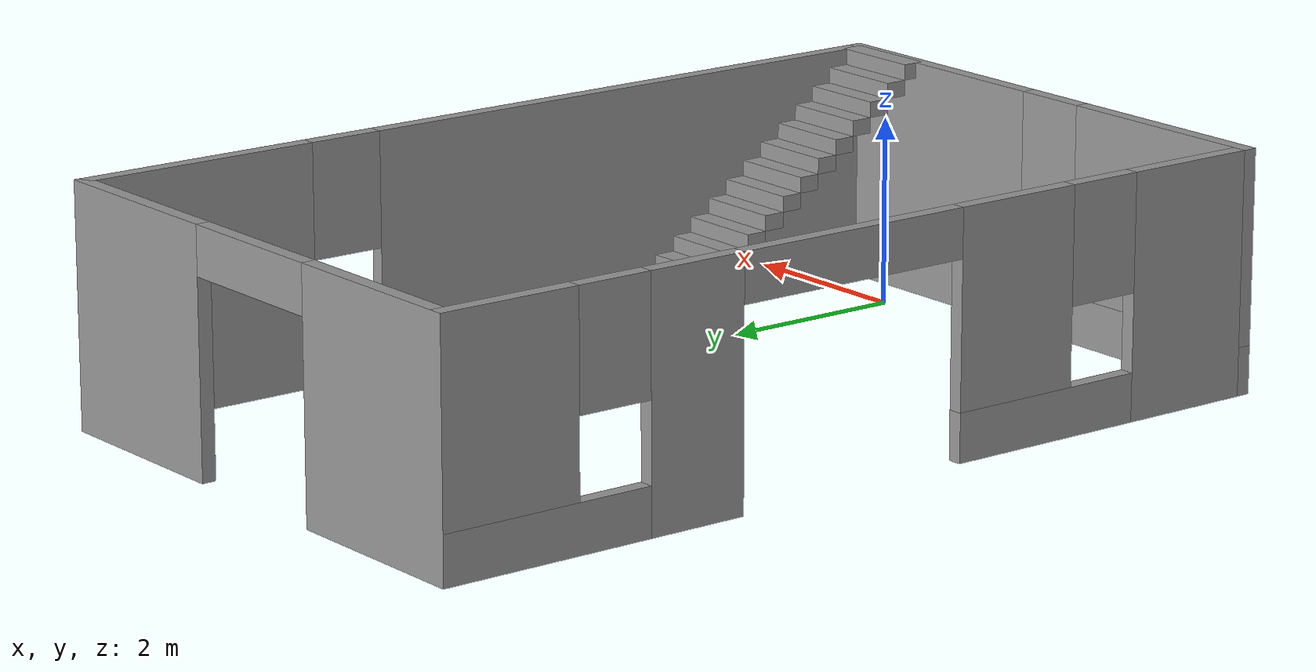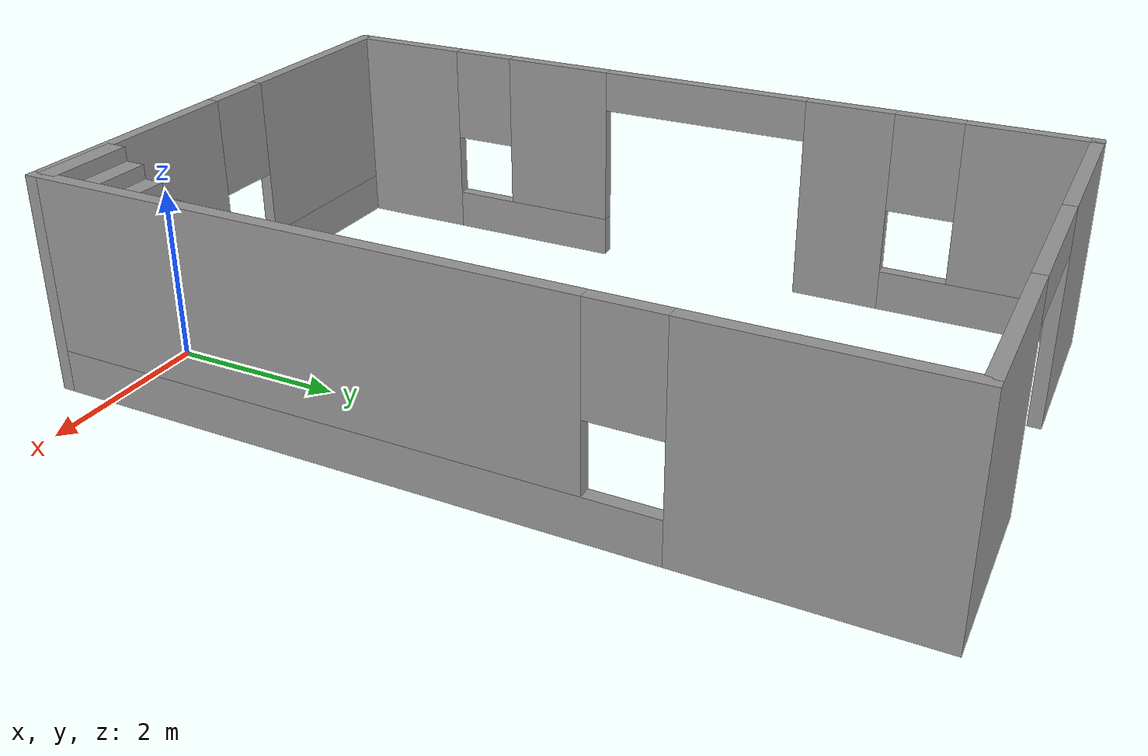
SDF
<?xml version='1.0'?>
<sdf version='1.6'>
  <model name='house1'>
    <pose frame=''>-1.775 4.21 0 0 -0 0</pose>
    <link name='Stairs_0'>
      <visual name='Stairs_0_Visual_0'>
        <pose frame=''>2.40484 -1.42237 0.083333 0 -0 0</pose>
        <geometry>
          <box>
            <size>1 0.233333 0.166667</size>
          </box>
        </geometry>
        <material>
          <script>
            <uri>file://media/materials/scripts/gazebo.material</uri>
            <name>Gazebo/Grey</name>
          </script>
          <ambient>1 1 1 1</ambient>
        </material>
        <meta>
          <layer>0</layer>
        </meta>
      </visual>
      <collision name='Stairs_0_Collision_0'>
        <geometry>
          <box>
            <size>1 0.233333 0.166667</size>
          </box>
        </geometry>
        <pose frame=''>2.40484 -1.42237 0.083333 0 -0 0</pose>
      </collision>
      <visual name='Stairs_0_Visual_1'>
        <pose frame=''>2.40484 -1.6557 0.25 0 -0 0</pose>
        <geometry>
          <box>
            <size>1 0.233333 0.166667</size>
          </box>
        </geometry>
        <material>
          <script>
            <uri>file://media/materials/scripts/gazebo.material</uri>
            <name>Gazebo/Grey</name>
          </script>
          <ambient>1 1 1 1</ambient>
        </material>
        <meta>
          <layer>0</layer>
        </meta>
      </visual>
      <collision name='Stairs_0_Collision_1'>
        <geometry>
          <box>
            <size>1 0.233333 0.166667</size>
          </box>
        </geometry>
        <pose frame=''>2.40484 -1.6557 0.25 0 -0 0</pose>
      </collision>
      <visual name='Stairs_0_Visual_2'>
        <pose frame=''>2.40484 -1.88904 0.416667 0 -0 0</pose>
        <geometry>
          <box>
            <size>1 0.233333 0.166667</size>
          </box>
        </geometry>
        <material>
          <script>
            <uri>file://media/materials/scripts/gazebo.material</uri>
            <name>Gazebo/Grey</name>
          </script>
          <ambient>1 1 1 1</ambient>
        </material>
        <meta>
          <layer>0</layer>
        </meta>
      </visual>
      <collision name='Stairs_0_Collision_2'>
        <geometry>
          <box>
            <size>1 0.233333 0.166667</size>
          </box>
        </geometry>
        <pose frame=''>2.40484 -1.88904 0.416667 0 -0 0</pose>
      </collision>
      <visual name='Stairs_0_Visual_3'>
        <pose frame=''>2.40484 -2.12237 0.583333 0 -0 0</pose>
        <geometry>
          <box>
            <size>1 0.233333 0.166667</size>
          </box>
        </geometry>
        <material>
          <script>
            <uri>file://media/materials/scripts/gazebo.material</uri>
            <name>Gazebo/Grey</name>
          </script>
          <ambient>1 1 1 1</ambient>
        </material>
        <meta>
          <layer>0</layer>
        </meta>
      </visual>
      <collision name='Stairs_0_Collision_3'>
        <geometry>
          <box>
            <size>1 0.233333 0.166667</size>
          </box>
        </geometry>
        <pose frame=''>2.40484 -2.12237 0.583333 0 -0 0</pose>
      </collision>
      <visual name='Stairs_0_Visual_4'>
        <pose frame=''>2.40484 -2.3557 0.75 0 -0 0</pose>
        <geometry>
          <box>
            <size>1 0.233333 0.166667</size>
          </box>
        </geometry>
        <material>
          <script>
            <uri>file://media/materials/scripts/gazebo.material</uri>
            <name>Gazebo/Grey</name>
          </script>
          <ambient>1 1 1 1</ambient>
        </material>
        <meta>
          <layer>0</layer>
        </meta>
      </visual>
      <collision name='Stairs_0_Collision_4'>
        <geometry>
          <box>
            <size>1 0.233333 0.166667</size>
          </box>
        </geometry>
        <pose frame=''>2.40484 -2.3557 0.75 0 -0 0</pose>
      </collision>
      <visual name='Stairs_0_Visual_5'>
        <pose frame=''>2.40484 -2.58904 0.916667 0 -0 0</pose>
        <geometry>
          <box>
            <size>1 0.233333 0.166667</size>
          </box>
        </geometry>
        <material>
          <script>
            <uri>file://media/materials/scripts/gazebo.material</uri>
            <name>Gazebo/Grey</name>
          </script>
          <ambient>1 1 1 1</ambient>
        </material>
        <meta>
          <layer>0</layer>
        </meta>
      </visual>
      <collision name='Stairs_0_Collision_5'>
        <geometry>
          <box>
            <size>1 0.233333 0.166667</size>
          </box>
        </geometry>
        <pose frame=''>2.40484 -2.58904 0.916667 0 -0 0</pose>
      </collision>
      <visual name='Stairs_0_Visual_6'>
        <pose frame=''>2.40484 -2.82237 1.08333 0 -0 0</pose>
        <geometry>
          <box>
            <size>1 0.233333 0.166667</size>
          </box>
        </geometry>
        <material>
          <script>
            <uri>file://media/materials/scripts/gazebo.material</uri>
            <name>Gazebo/Grey</name>
          </script>
          <ambient>1 1 1 1</ambient>
        </material>
        <meta>
          <layer>0</layer>
        </meta>
      </visual>
      <collision name='Stairs_0_Collision_6'>
        <geometry>
          <box>
            <size>1 0.233333 0.166667</size>
          </box>
        </geometry>
        <pose frame=''>2.40484 -2.82237 1.08333 0 -0 0</pose>
      </collision>
      <visual name='Stairs_0_Visual_7'>
        <pose frame=''>2.40484 -3.0557 1.25 0 -0 0</pose>
        <geometry>
          <box>
            <size>1 0.233333 0.166667</size>
          </box>
        </geometry>
        <material>
          <script>
            <uri>file://media/materials/scripts/gazebo.material</uri>
            <name>Gazebo/Grey</name>
          </script>
          <ambient>1 1 1 1</ambient>
        </material>
        <meta>
          <layer>0</layer>
        </meta>
      </visual>
      <collision name='Stairs_0_Collision_7'>
        <geometry>
          <box>
            <size>1 0.233333 0.166667</size>
          </box>
        </geometry>
        <pose frame=''>2.40484 -3.0557 1.25 0 -0 0</pose>
      </collision>
      <visual name='Stairs_0_Visual_8'>
        <pose frame=''>2.40484 -3.28904 1.41667 0 -0 0</pose>
        <geometry>
          <box>
            <size>1 0.233333 0.166667</size>
          </box>
        </geometry>
        <material>
          <script>
            <uri>file://media/materials/scripts/gazebo.material</uri>
            <name>Gazebo/Grey</name>
          </script>
          <ambient>1 1 1 1</ambient>
        </material>
        <meta>
          <layer>0</layer>
        </meta>
      </visual>
      <collision name='Stairs_0_Collision_8'>
        <geometry>
          <box>
            <size>1 0.233333 0.166667</size>
          </box>
        </geometry>
        <pose frame=''>2.40484 -3.28904 1.41667 0 -0 0</pose>
      </collision>
      <visual name='Stairs_0_Visual_9'>
        <pose frame=''>2.40484 -3.52237 1.58333 0 -0 0</pose>
        <geometry>
          <box>
            <size>1 0.233333 0.166667</size>
          </box>
        </geometry>
        <material>
          <script>
            <uri>file://media/materials/scripts/gazebo.material</uri>
            <name>Gazebo/Grey</name>
          </script>
          <ambient>1 1 1 1</ambient>
        </material>
        <meta>
          <layer>0</layer>
        </meta>
      </visual>
      <collision name='Stairs_0_Collision_9'>
        <geometry>
          <box>
            <size>1 0.233333 0.166667</size>
          </box>
        </geometry>
        <pose frame=''>2.40484 -3.52237 1.58333 0 -0 0</pose>
      </collision>
      <visual name='Stairs_0_Visual_10'>
        <pose frame=''>2.40484 -3.7557 1.75 0 -0 0</pose>
        <geometry>
          <box>
            <size>1 0.233333 0.166667</size>
          </box>
        </geometry>
        <material>
          <script>
            <uri>file://media/materials/scripts/gazebo.material</uri>
            <name>Gazebo/Grey</name>
          </script>
          <ambient>1 1 1 1</ambient>
        </material>
        <meta>
          <layer>0</layer>
        </meta>
      </visual>
      <collision name='Stairs_0_Collision_10'>
        <geometry>
          <box>
            <size>1 0.233333 0.166667</size>
          </box>
        </geometry>
        <pose frame=''>2.40484 -3.7557 1.75 0 -0 0</pose>
      </collision>
      <visual name='Stairs_0_Visual_11'>
        <pose frame=''>2.40484 -3.98904 1.91667 0 -0 0</pose>
        <geometry>
          <box>
            <size>1 0.233333 0.166667</size>
          </box>
        </geometry>
        <material>
          <script>
            <uri>file://media/materials/scripts/gazebo.material</uri>
            <name>Gazebo/Grey</name>
          </script>
          <ambient>1 1 1 1</ambient>
        </material>
        <meta>
          <layer>0</layer>
        </meta>
      </visual>
      <collision name='Stairs_0_Collision_11'>
        <geometry>
          <box>
            <size>1 0.233333 0.166667</size>
          </box>
        </geometry>
        <pose frame=''>2.40484 -3.98904 1.91667 0 -0 0</pose>
      </collision>
      <visual name='Stairs_0_Visual_12'>
        <pose frame=''>2.40484 -4.22237 2.08333 0 -0 0</pose>
        <geometry>
          <box>
            <size>1 0.233333 0.166667</size>
          </box>
        </geometry>
        <material>
          <script>
            <uri>file://media/materials/scripts/gazebo.material</uri>
            <name>Gazebo/Grey</name>
          </script>
          <ambient>1 1 1 1</ambient>
        </material>
        <meta>
          <layer>0</layer>
        </meta>
      </visual>
      <collision name='Stairs_0_Collision_12'>
        <geometry>
          <box>
            <size>1 0.233333 0.166667</size>
          </box>
        </geometry>
        <pose frame=''>2.40484 -4.22237 2.08333 0 -0 0</pose>
      </collision>
      <visual name='Stairs_0_Visual_13'>
        <pose frame=''>2.40484 -4.4557 2.25 0 -0 0</pose>
        <geometry>
          <box>
            <size>1 0.233333 0.166667</size>
          </box>
        </geometry>
        <material>
          <script>
            <uri>file://media/materials/scripts/gazebo.material</uri>
            <name>Gazebo/Grey</name>
          </script>
          <ambient>1 1 1 1</ambient>
        </material>
        <meta>
          <layer>0</layer>
        </meta>
      </visual>
      <collision name='Stairs_0_Collision_13'>
        <geometry>
          <box>
            <size>1 0.233333 0.166667</size>
          </box>
        </geometry>
        <pose frame=''>2.40484 -4.4557 2.25 0 -0 0</pose>
      </collision>
      <visual name='Stairs_0_Visual_14'>
        <pose frame=''>2.40484 -4.68904 2.41667 0 -0 0</pose>
        <geometry>
          <box>
            <size>1 0.233333 0.166667</size>
          </box>
        </geometry>
        <material>
          <script>
            <uri>file://media/materials/scripts/gazebo.material</uri>
            <name>Gazebo/Grey</name>
          </script>
          <ambient>1 1 1 1</ambient>
        </material>
        <meta>
          <layer>0</layer>
        </meta>
      </visual>
      <collision name='Stairs_0_Collision_14'>
        <geometry>
          <box>
            <size>1 0.233333 0.166667</size>
          </box>
        </geometry>
        <pose frame=''>2.40484 -4.68904 2.41667 0 -0 0</pose>
      </collision>
    </link>
    <link name='Wall_0'>
      <pose frame=''>-2.925 -0 0 0 -0 1.5708</pose>
      <visual name='Wall_0_Visual_0'>
        <pose frame=''>-4.08439 0 1.25 0 -0 0</pose>
        <geometry>
          <box>
            <size>1.58121 0.15 2.5</size>
          </box>
        </geometry>
        <material>
          <script>
            <uri>file://media/materials/scripts/gazebo.material</uri>
            <name>Gazebo/Grey</name>
          </script>
          <ambient>1 1 1 1</ambient>
        </material>
        <meta>
          <layer>0</layer>
        </meta>
      </visual>
      <collision name='Wall_0_Collision_0'>
        <geometry>
          <box>
            <size>1.58121 0.15 2.5</size>
          </box>
        </geometry>
        <pose frame=''>-4.08439 0 1.25 0 -0 0</pose>
      </collision>
      <visual name='Wall_0_Visual_1'>
        <pose frame=''>2.04929 0 1.25 0 -0 0</pose>
        <geometry>
          <box>
            <size>1.0642 0.15 2.5</size>
          </box>
        </geometry>
        <material>
          <script>
            <uri>file://media/materials/scripts/gazebo.material</uri>
            <name>Gazebo/Grey</name>
          </script>
          <ambient>1 1 1 1</ambient>
        </material>
        <meta>
          <layer>0</layer>
        </meta>
      </visual>
      <collision name='Wall_0_Collision_1'>
        <geometry>
          <box>
            <size>1.0642 0.15 2.5</size>
          </box>
        </geometry>
        <pose frame=''>2.04929 0 1.25 0 -0 0</pose>
      </collision>
      <visual name='Wall_0_Visual_2'>
        <pose frame=''>-2.19413 0 0.25 0 -0 0</pose>
        <geometry>
          <box>
            <size>2.19931 0.15 0.5</size>
          </box>
        </geometry>
        <material>
          <script>
            <uri>file://media/materials/scripts/gazebo.material</uri>
            <name>Gazebo/Grey</name>
          </script>
          <ambient>1 1 1 1</ambient>
        </material>
        <meta>
          <layer>0</layer>
        </meta>
      </visual>
      <collision name='Wall_0_Collision_2'>
        <geometry>
          <box>
            <size>2.19931 0.15 0.5</size>
          </box>
        </geometry>
        <pose frame=''>-2.19413 0 0.25 0 -0 0</pose>
      </collision>
      <visual name='Wall_0_Visual_3'>
        <pose frame=''>3.72819 0 0.25 0 -0 0</pose>
        <geometry>
          <box>
            <size>2.29361 0.15 0.5</size>
          </box>
        </geometry>
        <material>
          <script>
            <uri>file://media/materials/scripts/gazebo.material</uri>
            <name>Gazebo/Grey</name>
          </script>
          <ambient>1 1 1 1</ambient>
        </material>
        <meta>
          <layer>0</layer>
        </meta>
      </visual>
      <collision name='Wall_0_Collision_3'>
        <geometry>
          <box>
            <size>2.29361 0.15 0.5</size>
          </box>
        </geometry>
        <pose frame=''>3.72819 0 0.25 0 -0 0</pose>
      </collision>
      <visual name='Wall_0_Visual_4'>
        <pose frame=''>-1.79413 0 1.5 0 -0 0</pose>
        <geometry>
          <box>
            <size>1.39931 0.15 2</size>
          </box>
        </geometry>
        <material>
          <script>
            <uri>file://media/materials/scripts/gazebo.material</uri>
            <name>Gazebo/Grey</name>
          </script>
          <ambient>1 1 1 1</ambient>
        </material>
        <meta>
          <layer>0</layer>
        </meta>
      </visual>
      <collision name='Wall_0_Collision_4'>
        <geometry>
          <box>
            <size>1.39931 0.15 2</size>
          </box>
        </geometry>
        <pose frame=''>-1.79413 0 1.5 0 -0 0</pose>
      </collision>
      <visual name='Wall_0_Visual_5'>
        <pose frame=''>-1.79413 0 1.5 0 -0 0</pose>
        <geometry>
          <box>
            <size>1.39931 0.15 2</size>
          </box>
        </geometry>
        <material>
          <script>
            <uri>file://media/materials/scripts/gazebo.material</uri>
            <name>Gazebo/Grey</name>
          </script>
          <ambient>1 1 1 1</ambient>
        </material>
        <meta>
          <layer>0</layer>
        </meta>
      </visual>
      <collision name='Wall_0_Collision_5'>
        <geometry>
          <box>
            <size>1.39931 0.15 2</size>
          </box>
        </geometry>
        <pose frame=''>-1.79413 0 1.5 0 -0 0</pose>
      </collision>
      <visual name='Wall_0_Visual_6'>
        <pose frame=''>4.12819 0 1.5 0 -0 0</pose>
        <geometry>
          <box>
            <size>1.49361 0.15 2</size>
          </box>
        </geometry>
        <material>
          <script>
            <uri>file://media/materials/scripts/gazebo.material</uri>
            <name>Gazebo/Grey</name>
          </script>
          <ambient>1 1 1 1</ambient>
        </material>
        <meta>
          <layer>0</layer>
        </meta>
      </visual>
      <collision name='Wall_0_Collision_6'>
        <geometry>
          <box>
            <size>1.49361 0.15 2</size>
          </box>
        </geometry>
        <pose frame=''>4.12819 0 1.5 0 -0 0</pose>
      </collision>
      <visual name='Wall_0_Visual_7'>
        <pose frame=''>-2.89379 0 1.9 0 -0 0</pose>
        <geometry>
          <box>
            <size>0.8 0.15 1.2</size>
          </box>
        </geometry>
        <material>
          <script>
            <uri>file://media/materials/scripts/gazebo.material</uri>
            <name>Gazebo/Grey</name>
          </script>
          <ambient>1 1 1 1</ambient>
        </material>
        <meta>
          <layer>0</layer>
        </meta>
      </visual>
      <collision name='Wall_0_Collision_7'>
        <geometry>
          <box>
            <size>0.8 0.15 1.2</size>
          </box>
        </geometry>
        <pose frame=''>-2.89379 0 1.9 0 -0 0</pose>
      </collision>
      <visual name='Wall_0_Visual_8'>
        <pose frame=''>2.98139 0 1.9 0 -0 0</pose>
        <geometry>
          <box>
            <size>0.8 0.15 1.2</size>
          </box>
        </geometry>
        <material>
          <script>
            <uri>file://media/materials/scripts/gazebo.material</uri>
            <name>Gazebo/Grey</name>
          </script>
          <ambient>1 1 1 1</ambient>
        </material>
        <meta>
          <layer>0</layer>
        </meta>
      </visual>
      <collision name='Wall_0_Collision_8'>
        <geometry>
          <box>
            <size>0.8 0.15 1.2</size>
          </box>
        </geometry>
        <pose frame=''>2.98139 0 1.9 0 -0 0</pose>
      </collision>
      <visual name='Wall_0_Visual_9'>
        <pose frame=''>0.211357 0 2.25 0 -0 0</pose>
        <geometry>
          <box>
            <size>2.61166 0.15 0.5</size>
          </box>
        </geometry>
        <material>
          <script>
            <uri>file://media/materials/scripts/gazebo.material</uri>
            <name>Gazebo/Grey</name>
          </script>
          <ambient>1 1 1 1</ambient>
        </material>
        <meta>
          <layer>0</layer>
        </meta>
      </visual>
      <collision name='Wall_0_Collision_9'>
        <geometry>
          <box>
            <size>2.61166 0.15 0.5</size>
          </box>
        </geometry>
        <pose frame=''>0.211357 0 2.25 0 -0 0</pose>
      </collision>
      <visual name='Wall_0_Visual_10'>
        <pose frame=''>0.211357 0 2.25 0 -0 0</pose>
        <geometry>
          <box>
            <size>2.61166 0.15 0.5</size>
          </box>
        </geometry>
        <material>
          <script>
            <uri>file://media/materials/scripts/gazebo.material</uri>
            <name>Gazebo/Grey</name>
          </script>
          <ambient>1 1 1 1</ambient>
        </material>
        <meta>
          <layer>0</layer>
        </meta>
      </visual>
      <collision name='Wall_0_Collision_10'>
        <geometry>
          <box>
            <size>2.61166 0.15 0.5</size>
          </box>
        </geometry>
        <pose frame=''>0.211357 0 2.25 0 -0 0</pose>
      </collision>
    </link>
    <link name='Wall_1'>
      <pose frame=''>0 4.8 0 0 -0 0</pose>
      <visual name='Wall_1_Visual_0'>
        <pose frame=''>-1.93355 0 1.25 0 -0 0</pose>
        <geometry>
          <box>
            <size>2.13291 0.15 2.5</size>
          </box>
        </geometry>
        <material>
          <script>
            <uri>file://media/materials/scripts/gazebo.material</uri>
            <name>Gazebo/Grey</name>
          </script>
          <ambient>1 1 1 1</ambient>
        </material>
        <meta>
          <layer>0</layer>
        </meta>
      </visual>
      <collision name='Wall_1_Collision_0'>
        <geometry>
          <box>
            <size>2.13291 0.15 2.5</size>
          </box>
        </geometry>
        <pose frame=''>-1.93355 0 1.25 0 -0 0</pose>
      </collision>
      <visual name='Wall_1_Visual_1'>
        <pose frame=''>1.9328 0 1.25 0 -0 0</pose>
        <geometry>
          <box>
            <size>2.13439 0.15 2.5</size>
          </box>
        </geometry>
        <material>
          <script>
            <uri>file://media/materials/scripts/gazebo.material</uri>
            <name>Gazebo/Grey</name>
          </script>
          <ambient>1 1 1 1</ambient>
        </material>
        <meta>
          <layer>0</layer>
        </meta>
      </visual>
      <collision name='Wall_1_Collision_1'>
        <geometry>
          <box>
            <size>2.13439 0.15 2.5</size>
          </box>
        </geometry>
        <pose frame=''>1.9328 0 1.25 0 -0 0</pose>
      </collision>
      <visual name='Wall_1_Visual_2'>
        <pose frame=''>-0.000743 0 2.25 0 -0 0</pose>
        <geometry>
          <box>
            <size>1.7327 0.15 0.5</size>
          </box>
        </geometry>
        <material>
          <script>
            <uri>file://media/materials/scripts/gazebo.material</uri>
            <name>Gazebo/Grey</name>
          </script>
          <ambient>1 1 1 1</ambient>
        </material>
        <meta>
          <layer>0</layer>
        </meta>
      </visual>
      <collision name='Wall_1_Collision_2'>
        <geometry>
          <box>
            <size>1.7327 0.15 0.5</size>
          </box>
        </geometry>
        <pose frame=''>-0.000743 0 2.25 0 -0 0</pose>
      </collision>
    </link>
    <link name='Wall_2'>
      <pose frame=''>2.925 -0 0 0 -0 -1.5708</pose>
      <visual name='Wall_2_Visual_0'>
        <pose frame=''>-3.56149 0 1.25 0 -0 0</pose>
        <geometry>
          <box>
            <size>2.62701 0.15 2.5</size>
          </box>
        </geometry>
        <material>
          <script>
            <uri>file://media/materials/scripts/gazebo.material</uri>
            <name>Gazebo/Grey</name>
          </script>
          <ambient>1 1 1 1</ambient>
        </material>
        <meta>
          <layer>0</layer>
        </meta>
      </visual>
      <collision name='Wall_2_Collision_0'>
        <geometry>
          <box>
            <size>2.62701 0.15 2.5</size>
          </box>
        </geometry>
        <pose frame=''>-3.56149 0 1.25 0 -0 0</pose>
      </collision>
      <visual name='Wall_2_Visual_1'>
        <pose frame=''>1.31351 0 0.25 0 -0 0</pose>
        <geometry>
          <box>
            <size>7.12299 0.15 0.5</size>
          </box>
        </geometry>
        <material>
          <script>
            <uri>file://media/materials/scripts/gazebo.material</uri>
            <name>Gazebo/Grey</name>
          </script>
          <ambient>1 1 1 1</ambient>
        </material>
        <meta>
          <layer>0</layer>
        </meta>
      </visual>
      <collision name='Wall_2_Collision_1'>
        <geometry>
          <box>
            <size>7.12299 0.15 0.5</size>
          </box>
        </geometry>
        <pose frame=''>1.31351 0 0.25 0 -0 0</pose>
      </collision>
      <visual name='Wall_2_Visual_2'>
        <pose frame=''>1.71351 0 1.5 0 -0 0</pose>
        <geometry>
          <box>
            <size>6.32299 0.15 2</size>
          </box>
        </geometry>
        <material>
          <script>
            <uri>file://media/materials/scripts/gazebo.material</uri>
            <name>Gazebo/Grey</name>
          </script>
          <ambient>1 1 1 1</ambient>
        </material>
        <meta>
          <layer>0</layer>
        </meta>
      </visual>
      <collision name='Wall_2_Collision_2'>
        <geometry>
          <box>
            <size>6.32299 0.15 2</size>
          </box>
        </geometry>
        <pose frame=''>1.71351 0 1.5 0 -0 0</pose>
      </collision>
      <visual name='Wall_2_Visual_3'>
        <pose frame=''>-1.84799 0 1.9 0 -0 0</pose>
        <geometry>
          <box>
            <size>0.8 0.15 1.2</size>
          </box>
        </geometry>
        <material>
          <script>
            <uri>file://media/materials/scripts/gazebo.material</uri>
            <name>Gazebo/Grey</name>
          </script>
          <ambient>1 1 1 1</ambient>
        </material>
        <meta>
          <layer>0</layer>
        </meta>
      </visual>
      <collision name='Wall_2_Collision_3'>
        <geometry>
          <box>
            <size>0.8 0.15 1.2</size>
          </box>
        </geometry>
        <pose frame=''>-1.84799 0 1.9 0 -0 0</pose>
      </collision>
    </link>
    <link name='Wall_3'>
      <pose frame=''>0 -4.8 0 0 -0 3.14159</pose>
      <visual name='Wall_3_Visual_0'>
        <pose frame=''>-1.61122 0 1.25 0 -0 0</pose>
        <geometry>
          <box>
            <size>2.77757 0.15 2.5</size>
          </box>
        </geometry>
        <material>
          <script>
            <uri>file://media/materials/scripts/gazebo.material</uri>
            <name>Gazebo/Grey</name>
          </script>
          <ambient>1 1 1 1</ambient>
        </material>
        <meta>
          <layer>0</layer>
        </meta>
      </visual>
      <collision name='Wall_3_Collision_0'>
        <geometry>
          <box>
            <size>2.77757 0.15 2.5</size>
          </box>
        </geometry>
        <pose frame=''>-1.61122 0 1.25 0 -0 0</pose>
      </collision>
      <visual name='Wall_3_Visual_1'>
        <pose frame=''>1.38878 0 0.25 0 -0 0</pose>
        <geometry>
          <box>
            <size>3.22243 0.15 0.5</size>
          </box>
        </geometry>
        <material>
          <script>
            <uri>file://media/materials/scripts/gazebo.material</uri>
            <name>Gazebo/Grey</name>
          </script>
          <ambient>1 1 1 1</ambient>
        </material>
        <meta>
          <layer>0</layer>
        </meta>
      </visual>
      <collision name='Wall_3_Collision_1'>
        <geometry>
          <box>
            <size>3.22243 0.15 0.5</size>
          </box>
        </geometry>
        <pose frame=''>1.38878 0 0.25 0 -0 0</pose>
      </collision>
      <visual name='Wall_3_Visual_2'>
        <pose frame=''>1.78878 0 1.5 0 -0 0</pose>
        <geometry>
          <box>
            <size>2.42243 0.15 2</size>
          </box>
        </geometry>
        <material>
          <script>
            <uri>file://media/materials/scripts/gazebo.material</uri>
            <name>Gazebo/Grey</name>
          </script>
          <ambient>1 1 1 1</ambient>
        </material>
        <meta>
          <layer>0</layer>
        </meta>
      </visual>
      <collision name='Wall_3_Collision_2'>
        <geometry>
          <box>
            <size>2.42243 0.15 2</size>
          </box>
        </geometry>
        <pose frame=''>1.78878 0 1.5 0 -0 0</pose>
      </collision>
      <visual name='Wall_3_Visual_3'>
        <pose frame=''>0.177567 0 1.9 0 -0 0</pose>
        <geometry>
          <box>
            <size>0.8 0.15 1.2</size>
          </box>
        </geometry>
        <material>
          <script>
            <uri>file://media/materials/scripts/gazebo.material</uri>
            <name>Gazebo/Grey</name>
          </script>
          <ambient>1 1 1 1</ambient>
        </material>
        <meta>
          <layer>0</layer>
        </meta>
      </visual>
      <collision name='Wall_3_Collision_3'>
        <geometry>
          <box>
            <size>0.8 0.15 1.2</size>
          </box>
        </geometry>
        <pose frame=''>0.177567 0 1.9 0 -0 0</pose>
      </collision>
    </link>
    <static>1</static>
  </model>
</sdf>
